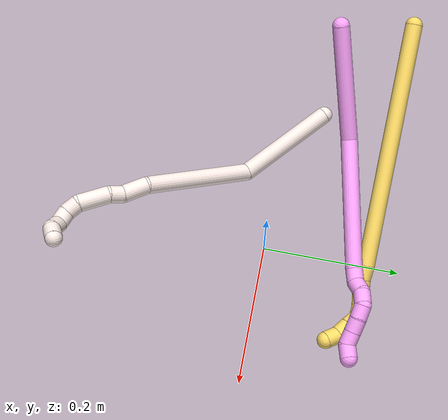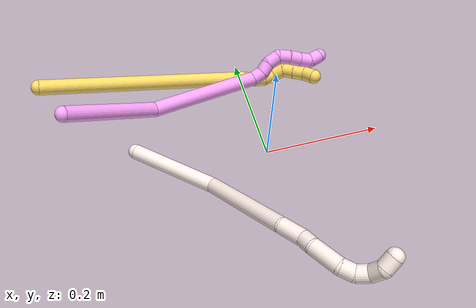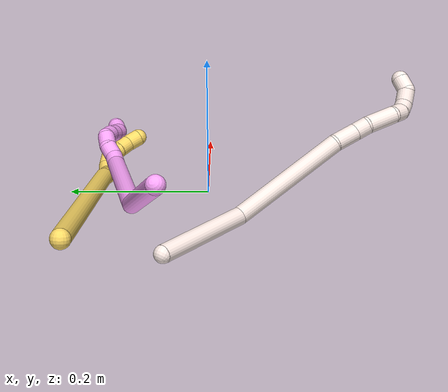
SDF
<sdf version="1.7">
 <world name="default">
  <model name="4">
   <static>0</static>
   <link name="4">
    <collision name="collision-cylinder-e_1_1_4">
     <pose>0.036345 0.019995 -0.072562 -2.87271 0.449857 -2.0738</pose>
     <geometry><cylinder><radius>0.0125</radius><length>0.167164</length></cylinder></geometry>
     <surface>
      <friction><ode><mu>1.16</mu><mu2>1.16</mu2><slip1>0</slip1><slip2>0</slip2></ode></friction>
      <contact><ode><kp>1e+06</kp><kd>1</kd><max_vel>0</max_vel><min_depth>0.001</min_depth></ode></contact>
     </surface>
    </collision>
    <visual name="visual-cylinder-e_1_1_4">
     <pose>0.036345 0.019995 -0.072562 -2.87271 0.449857 -2.0738</pose>
     <geometry><cylinder><radius>0.0125</radius><length>0.167164</length></cylinder></geometry>
     <material><ambient>1 0.65098 0.996078 1</ambient></material>
    </visual>
    <collision name="collision-cylinder-e_2_4_5">
     <pose>0.138689 0.03222 -0.212944 3.02753 0.768535 2.86106</pose>
     <geometry><cylinder><radius>0.0125</radius><length>0.189905</length></cylinder></geometry>
     <surface>
      <friction><ode><mu>1.16</mu><mu2>1.16</mu2><slip1>0</slip1><slip2>0</slip2></ode></friction>
      <contact><ode><kp>1e+06</kp><kd>1</kd><max_vel>0</max_vel><min_depth>0.001</min_depth></ode></contact>
     </surface>
    </collision>
    <visual name="visual-cylinder-e_2_4_5">
     <pose>0.138689 0.03222 -0.212944 3.02753 0.768535 2.86106</pose>
     <geometry><cylinder><radius>0.0125</radius><length>0.189905</length></cylinder></geometry>
     <material><ambient>1 0.65098 0.996078 1</ambient></material>
    </visual>
    <collision name="collision-cylinder-e_3_5_6">
     <pose>0.213329 0.02226 -0.285831 2.73339 1.00231 2.41906</pose>
     <geometry><cylinder><radius>0.0125</radius><length>0.020506</length></cylinder></geometry>
     <surface>
      <friction><ode><mu>1.16</mu><mu2>1.16</mu2><slip1>0</slip1><slip2>0</slip2></ode></friction>
      <contact><ode><kp>1e+06</kp><kd>1</kd><max_vel>0</max_vel><min_depth>0.001</min_depth></ode></contact>
     </surface>
    </collision>
    <visual name="visual-cylinder-e_3_5_6">
     <pose>0.213329 0.02226 -0.285831 2.73339 1.00231 2.41906</pose>
     <geometry><cylinder><radius>0.0125</radius><length>0.020506</length></cylinder></geometry>
     <material><ambient>1 0.65098 0.996078 1</ambient></material>
    </visual>
    <collision name="collision-cylinder-e_4_6_7">
     <pose>0.231882 0.018429 -0.290956 1.60684 1.40678 1.44245</pose>
     <geometry><cylinder><radius>0.0125</radius><length>0.020095</length></cylinder></geometry>
     <surface>
      <friction><ode><mu>1.16</mu><mu2>1.16</mu2><slip1>0</slip1><slip2>0</slip2></ode></friction>
      <contact><ode><kp>1e+06</kp><kd>1</kd><max_vel>0</max_vel><min_depth>0.001</min_depth></ode></contact>
     </surface>
    </collision>
    <visual name="visual-cylinder-e_4_6_7">
     <pose>0.231882 0.018429 -0.290956 1.60684 1.40678 1.44245</pose>
     <geometry><cylinder><radius>0.0125</radius><length>0.020095</length></cylinder></geometry>
     <material><ambient>1 0.65098 0.996078 1</ambient></material>
    </visual>
    <collision name="collision-cylinder-e_5_7_8">
     <pose>0.251248 0.013023 -0.29482 2.36119 1.05551 1.91266</pose>
     <geometry><cylinder><radius>0.0125</radius><length>0.021727</length></cylinder></geometry>
     <surface>
      <friction><ode><mu>1.16</mu><mu2>1.16</mu2><slip1>0</slip1><slip2>0</slip2></ode></friction>
      <contact><ode><kp>1e+06</kp><kd>1</kd><max_vel>0</max_vel><min_depth>0.001</min_depth></ode></contact>
     </surface>
    </collision>
    <visual name="visual-cylinder-e_5_7_8">
     <pose>0.251248 0.013023 -0.29482 2.36119 1.05551 1.91266</pose>
     <geometry><cylinder><radius>0.0125</radius><length>0.021727</length></cylinder></geometry>
     <material><ambient>1 0.65098 0.996078 1</ambient></material>
    </visual>
    <collision name="collision-cylinder-e_6_8_9">
     <pose>0.265044 0.005861 -0.30715 2.76252 0.442061 1.72824</pose>
     <geometry><cylinder><radius>0.0125</radius><length>0.020306</length></cylinder></geometry>
     <surface>
      <friction><ode><mu>1.16</mu><mu2>1.16</mu2><slip1>0</slip1><slip2>0</slip2></ode></friction>
      <contact><ode><kp>1e+06</kp><kd>1</kd><max_vel>0</max_vel><min_depth>0.001</min_depth></ode></contact>
     </surface>
    </collision>
    <visual name="visual-cylinder-e_6_8_9">
     <pose>0.265044 0.005861 -0.30715 2.76252 0.442061 1.72824</pose>
     <geometry><cylinder><radius>0.0125</radius><length>0.020306</length></cylinder></geometry>
     <material><ambient>1 0.65098 0.996078 1</ambient></material>
    </visual>
    <collision name="collision-cylinder-e_7_9_10">
     <pose>0.27263 -0.000297 -0.324846 2.84916 0.326461 1.68243</pose>
     <geometry><cylinder><radius>0.0125</radius><length>0.020223</length></cylinder></geometry>
     <surface>
      <friction><ode><mu>1.16</mu><mu2>1.16</mu2><slip1>0</slip1><slip2>0</slip2></ode></friction>
      <contact><ode><kp>1e+06</kp><kd>1</kd><max_vel>0</max_vel><min_depth>0.001</min_depth></ode></contact>
     </surface>
    </collision>
    <visual name="visual-cylinder-e_7_9_10">
     <pose>0.27263 -0.000297 -0.324846 2.84916 0.326461 1.68243</pose>
     <geometry><cylinder><radius>0.0125</radius><length>0.020223</length></cylinder></geometry>
     <material><ambient>1 0.65098 0.996078 1</ambient></material>
    </visual>
    <collision name="collision-cylinder-e_8_10_11">
     <pose>0.279429 -0.006328 -0.342791 2.78478 0.362934 1.58818</pose>
     <geometry><cylinder><radius>0.0125</radius><length>0.020034</length></cylinder></geometry>
     <surface>
      <friction><ode><mu>1.16</mu><mu2>1.16</mu2><slip1>0</slip1><slip2>0</slip2></ode></friction>
      <contact><ode><kp>1e+06</kp><kd>1</kd><max_vel>0</max_vel><min_depth>0.001</min_depth></ode></contact>
     </surface>
    </collision>
    <visual name="visual-cylinder-e_8_10_11">
     <pose>0.279429 -0.006328 -0.342791 2.78478 0.362934 1.58818</pose>
     <geometry><cylinder><radius>0.0125</radius><length>0.020034</length></cylinder></geometry>
     <material><ambient>1 0.65098 0.996078 1</ambient></material>
    </visual>
    <collision name="collision-cylinder-e_9_11_2">
     <pose>0.291248 -0.011039 -0.357048 2.8848 0.969511 2.66081</pose>
     <geometry><cylinder><radius>0.0125</radius><length>0.02004</length></cylinder></geometry>
     <surface>
      <friction><ode><mu>1.16</mu><mu2>1.16</mu2><slip1>0</slip1><slip2>0</slip2></ode></friction>
      <contact><ode><kp>1e+06</kp><kd>1</kd><max_vel>0</max_vel><min_depth>0.001</min_depth></ode></contact>
     </surface>
    </collision>
    <visual name="visual-cylinder-e_9_11_2">
     <pose>0.291248 -0.011039 -0.357048 2.8848 0.969511 2.66081</pose>
     <geometry><cylinder><radius>0.0125</radius><length>0.02004</length></cylinder></geometry>
     <material><ambient>1 0.65098 0.996078 1</ambient></material>
    </visual>
    <collision name="collision-sphere-2">
     <pose>0.299511 -0.012478 -0.362531 0 -0 0</pose>
     <geometry><sphere><radius>0.0125</radius></sphere></geometry>
     <surface>
      <friction><ode><mu>1.16</mu><mu2>1.16</mu2><slip1>0</slip1><slip2>0</slip2></ode></friction>
      <contact><ode><kp>1e+06</kp><kd>1</kd><max_vel>0</max_vel><min_depth>0.001</min_depth></ode></contact>
     </surface>
    </collision>
    <visual name="visual-sphere-2">
     <pose>0.299511 -0.012478 -0.362531 0 -0 0</pose>
     <geometry><sphere><radius>0.0125</radius></sphere></geometry>
     <material><ambient>1 0.65098 0.996078 1</ambient></material>
    </visual>
    <collision name="collision-sphere-11">
     <pose>0.282985 -0.009599 -0.351566 0 -0 0</pose>
     <geometry><sphere><radius>0.0125</radius></sphere></geometry>
     <surface>
      <friction><ode><mu>1.16</mu><mu2>1.16</mu2><slip1>0</slip1><slip2>0</slip2></ode></friction>
      <contact><ode><kp>1e+06</kp><kd>1</kd><max_vel>0</max_vel><min_depth>0.001</min_depth></ode></contact>
     </surface>
    </collision>
    <visual name="visual-sphere-11">
     <pose>0.282985 -0.009599 -0.351566 0 -0 0</pose>
     <geometry><sphere><radius>0.0125</radius></sphere></geometry>
     <material><ambient>1 0.65098 0.996078 1</ambient></material>
    </visual>
    <collision name="collision-sphere-10">
     <pose>0.275873 -0.003058 -0.334017 0 -0 0</pose>
     <geometry><sphere><radius>0.0125</radius></sphere></geometry>
     <surface>
      <friction><ode><mu>1.16</mu><mu2>1.16</mu2><slip1>0</slip1><slip2>0</slip2></ode></friction>
      <contact><ode><kp>1e+06</kp><kd>1</kd><max_vel>0</max_vel><min_depth>0.001</min_depth></ode></contact>
     </surface>
    </collision>
    <visual name="visual-sphere-10">
     <pose>0.275873 -0.003058 -0.334017 0 -0 0</pose>
     <geometry><sphere><radius>0.0125</radius></sphere></geometry>
     <material><ambient>1 0.65098 0.996078 1</ambient></material>
    </visual>
    <collision name="collision-sphere-9">
     <pose>0.269387 0.002464 -0.315675 0 -0 0</pose>
     <geometry><sphere><radius>0.0125</radius></sphere></geometry>
     <surface>
      <friction><ode><mu>1.16</mu><mu2>1.16</mu2><slip1>0</slip1><slip2>0</slip2></ode></friction>
      <contact><ode><kp>1e+06</kp><kd>1</kd><max_vel>0</max_vel><min_depth>0.001</min_depth></ode></contact>
     </surface>
    </collision>
    <visual name="visual-sphere-9">
     <pose>0.269387 0.002464 -0.315675 0 -0 0</pose>
     <geometry><sphere><radius>0.0125</radius></sphere></geometry>
     <material><ambient>1 0.65098 0.996078 1</ambient></material>
    </visual>
    <collision name="collision-sphere-4">
     <pose>0.072689 0.03999 -0.145124 0 -0 0</pose>
     <geometry><sphere><radius>0.0125</radius></sphere></geometry>
     <surface>
      <friction><ode><mu>1.16</mu><mu2>1.16</mu2><slip1>0</slip1><slip2>0</slip2></ode></friction>
      <contact><ode><kp>1e+06</kp><kd>1</kd><max_vel>0</max_vel><min_depth>0.001</min_depth></ode></contact>
     </surface>
    </collision>
    <visual name="visual-sphere-4">
     <pose>0.072689 0.03999 -0.145124 0 -0 0</pose>
     <geometry><sphere><radius>0.0125</radius></sphere></geometry>
     <material><ambient>1 0.65098 0.996078 1</ambient></material>
    </visual>
    <collision name="collision-sphere-1">
     <geometry><sphere><radius>0.0125</radius></sphere></geometry>
     <surface>
      <friction><ode><mu>1.16</mu><mu2>1.16</mu2><slip1>0</slip1><slip2>0</slip2></ode></friction>
      <contact><ode><kp>1e+06</kp><kd>1</kd><max_vel>0</max_vel><min_depth>0.001</min_depth></ode></contact>
     </surface>
    </collision>
    <visual name="visual-sphere-1">
     <geometry><sphere><radius>0.0125</radius></sphere></geometry>
     <material><ambient>1 0.65098 0.996078 1</ambient></material>
    </visual>
    <collision name="collision-sphere-8">
     <pose>0.260701 0.009257 -0.298624 0 -0 0</pose>
     <geometry><sphere><radius>0.0125</radius></sphere></geometry>
     <surface>
      <friction><ode><mu>1.16</mu><mu2>1.16</mu2><slip1>0</slip1><slip2>0</slip2></ode></friction>
      <contact><ode><kp>1e+06</kp><kd>1</kd><max_vel>0</max_vel><min_depth>0.001</min_depth></ode></contact>
     </surface>
    </collision>
    <visual name="visual-sphere-8">
     <pose>0.260701 0.009257 -0.298624 0 -0 0</pose>
     <geometry><sphere><radius>0.0125</radius></sphere></geometry>
     <material><ambient>1 0.65098 0.996078 1</ambient></material>
    </visual>
    <collision name="collision-sphere-5">
     <pose>0.204689 0.024451 -0.280765 0 -0 0</pose>
     <geometry><sphere><radius>0.0125</radius></sphere></geometry>
     <surface>
      <friction><ode><mu>1.16</mu><mu2>1.16</mu2><slip1>0</slip1><slip2>0</slip2></ode></friction>
      <contact><ode><kp>1e+06</kp><kd>1</kd><max_vel>0</max_vel><min_depth>0.001</min_depth></ode></contact>
     </surface>
    </collision>
    <visual name="visual-sphere-5">
     <pose>0.204689 0.024451 -0.280765 0 -0 0</pose>
     <geometry><sphere><radius>0.0125</radius></sphere></geometry>
     <material><ambient>1 0.65098 0.996078 1</ambient></material>
    </visual>
    <collision name="collision-sphere-6">
     <pose>0.221969 0.020069 -0.290897 0 -0 0</pose>
     <geometry><sphere><radius>0.0125</radius></sphere></geometry>
     <surface>
      <friction><ode><mu>1.16</mu><mu2>1.16</mu2><slip1>0</slip1><slip2>0</slip2></ode></friction>
      <contact><ode><kp>1e+06</kp><kd>1</kd><max_vel>0</max_vel><min_depth>0.001</min_depth></ode></contact>
     </surface>
    </collision>
    <visual name="visual-sphere-6">
     <pose>0.221969 0.020069 -0.290897 0 -0 0</pose>
     <geometry><sphere><radius>0.0125</radius></sphere></geometry>
     <material><ambient>1 0.65098 0.996078 1</ambient></material>
    </visual>
    <collision name="collision-sphere-7">
     <pose>0.241795 0.01679 -0.291016 0 -0 0</pose>
     <geometry><sphere><radius>0.0125</radius></sphere></geometry>
     <surface>
      <friction><ode><mu>1.16</mu><mu2>1.16</mu2><slip1>0</slip1><slip2>0</slip2></ode></friction>
      <contact><ode><kp>1e+06</kp><kd>1</kd><max_vel>0</max_vel><min_depth>0.001</min_depth></ode></contact>
     </surface>
    </collision>
    <visual name="visual-sphere-7">
     <pose>0.241795 0.01679 -0.291016 0 -0 0</pose>
     <geometry><sphere><radius>0.0125</radius></sphere></geometry>
     <material><ambient>1 0.65098 0.996078 1</ambient></material>
    </visual>
    <inertial>
     <pose>0.138473 0.020672 -0.195023 0 -0 0</pose>
     <mass>0.5</mass>
     <inertia>
      <ixx>-0.000741</ixx>
      <ixy>0</ixy>
      <ixz>0</ixz>
      <iyy>0.000603</iyy>
      <iyz>0</iyz>
      <izz>-0.000654</izz>
     </inertia>
    </inertial>
   </link>
   <pose>-0.308078 0.051693 0.147486 -0.719955 -0.474557 0.779487</pose>
  </model>
  <model name="5">
   <static>0</static>
   <link name="5">
    <collision name="collision-cylinder-e_1_1_4">
     <pose>0.177254 -0.023045 0.004818 1.36468 1.43875 1.23714</pose>
     <geometry><cylinder><radius>0.0125</radius><length>0.357621</length></cylinder></geometry>
     <surface>
      <friction><ode><mu>1.16</mu><mu2>1.16</mu2><slip1>0</slip1><slip2>0</slip2></ode></friction>
      <contact><ode><kp>1e+06</kp><kd>1</kd><max_vel>0</max_vel><min_depth>0.001</min_depth></ode></contact>
     </surface>
    </collision>
    <visual name="visual-cylinder-e_1_1_4">
     <pose>0.177254 -0.023045 0.004818 1.36468 1.43875 1.23714</pose>
     <geometry><cylinder><radius>0.0125</radius><length>0.357621</length></cylinder></geometry>
     <material><ambient>1 0.858824 0.4 1</ambient></material>
    </visual>
    <collision name="collision-cylinder-e_2_4_5">
     <pose>0.364315 -0.048328 0.008978 1.85709 1.33726 1.62537</pose>
     <geometry><cylinder><radius>0.0125</radius><length>0.020163</length></cylinder></geometry>
     <surface>
      <friction><ode><mu>1.16</mu><mu2>1.16</mu2><slip1>0</slip1><slip2>0</slip2></ode></friction>
      <contact><ode><kp>1e+06</kp><kd>1</kd><max_vel>0</max_vel><min_depth>0.001</min_depth></ode></contact>
     </surface>
    </collision>
    <visual name="visual-cylinder-e_2_4_5">
     <pose>0.364315 -0.048328 0.008978 1.85709 1.33726 1.62537</pose>
     <geometry><cylinder><radius>0.0125</radius><length>0.020163</length></cylinder></geometry>
     <material><ambient>1 0.858824 0.4 1</ambient></material>
    </visual>
    <collision name="collision-cylinder-e_3_5_6">
     <pose>0.38452 -0.050904 0.007847 2.5196 1.51503 2.48635</pose>
     <geometry><cylinder><radius>0.0125</radius><length>0.020826</length></cylinder></geometry>
     <surface>
      <friction><ode><mu>1.16</mu><mu2>1.16</mu2><slip1>0</slip1><slip2>0</slip2></ode></friction>
      <contact><ode><kp>1e+06</kp><kd>1</kd><max_vel>0</max_vel><min_depth>0.001</min_depth></ode></contact>
     </surface>
    </collision>
    <visual name="visual-cylinder-e_3_5_6">
     <pose>0.38452 -0.050904 0.007847 2.5196 1.51503 2.48635</pose>
     <geometry><cylinder><radius>0.0125</radius><length>0.020826</length></cylinder></geometry>
     <material><ambient>1 0.858824 0.4 1</ambient></material>
    </visual>
    <collision name="collision-cylinder-e_4_6_7">
     <pose>0.404121 -0.050892 0.011421 -0.086286 1.15526 -0.05626</pose>
     <geometry><cylinder><radius>0.0125</radius><length>0.020119</length></cylinder></geometry>
     <surface>
      <friction><ode><mu>1.16</mu><mu2>1.16</mu2><slip1>0</slip1><slip2>0</slip2></ode></friction>
      <contact><ode><kp>1e+06</kp><kd>1</kd><max_vel>0</max_vel><min_depth>0.001</min_depth></ode></contact>
     </surface>
    </collision>
    <visual name="visual-cylinder-e_4_6_7">
     <pose>0.404121 -0.050892 0.011421 -0.086286 1.15526 -0.05626</pose>
     <geometry><cylinder><radius>0.0125</radius><length>0.020119</length></cylinder></geometry>
     <material><ambient>1 0.858824 0.4 1</ambient></material>
    </visual>
    <collision name="collision-cylinder-e_5_7_8">
     <pose>0.420966 -0.052498 0.022308 0.278534 0.821074 0.121876</pose>
     <geometry><cylinder><radius>0.0125</radius><length>0.020883</length></cylinder></geometry>
     <surface>
      <friction><ode><mu>1.16</mu><mu2>1.16</mu2><slip1>0</slip1><slip2>0</slip2></ode></friction>
      <contact><ode><kp>1e+06</kp><kd>1</kd><max_vel>0</max_vel><min_depth>0.001</min_depth></ode></contact>
     </surface>
    </collision>
    <visual name="visual-cylinder-e_5_7_8">
     <pose>0.420966 -0.052498 0.022308 0.278534 0.821074 0.121876</pose>
     <geometry><cylinder><radius>0.0125</radius><length>0.020883</length></cylinder></geometry>
     <material><ambient>1 0.858824 0.4 1</ambient></material>
    </visual>
    <collision name="collision-cylinder-e_6_8_9">
     <pose>0.434717 -0.061395 0.032987 1.06559 0.656293 0.396252</pose>
     <geometry><cylinder><radius>0.0125</radius><length>0.020022</length></cylinder></geometry>
     <surface>
      <friction><ode><mu>1.16</mu><mu2>1.16</mu2><slip1>0</slip1><slip2>0</slip2></ode></friction>
      <contact><ode><kp>1e+06</kp><kd>1</kd><max_vel>0</max_vel><min_depth>0.001</min_depth></ode></contact>
     </surface>
    </collision>
    <visual name="visual-cylinder-e_6_8_9">
     <pose>0.434717 -0.061395 0.032987 1.06559 0.656293 0.396252</pose>
     <geometry><cylinder><radius>0.0125</radius><length>0.020022</length></cylinder></geometry>
     <material><ambient>1 0.858824 0.4 1</ambient></material>
    </visual>
    <collision name="collision-cylinder-e_7_9_10">
     <pose>0.447319 -0.0751 0.040729 1.04748 0.693675 0.411591</pose>
     <geometry><cylinder><radius>0.0125</radius><length>0.020315</length></cylinder></geometry>
     <surface>
      <friction><ode><mu>1.16</mu><mu2>1.16</mu2><slip1>0</slip1><slip2>0</slip2></ode></friction>
      <contact><ode><kp>1e+06</kp><kd>1</kd><max_vel>0</max_vel><min_depth>0.001</min_depth></ode></contact>
     </surface>
    </collision>
    <visual name="visual-cylinder-e_7_9_10">
     <pose>0.447319 -0.0751 0.040729 1.04748 0.693675 0.411591</pose>
     <geometry><cylinder><radius>0.0125</radius><length>0.020315</length></cylinder></geometry>
     <material><ambient>1 0.858824 0.4 1</ambient></material>
    </visual>
    <collision name="collision-cylinder-e_8_10_2">
     <pose>0.457507 -0.090147 0.048908 1.09419 0.377249 0.231512</pose>
     <geometry><cylinder><radius>0.0125</radius><length>0.020051</length></cylinder></geometry>
     <surface>
      <friction><ode><mu>1.16</mu><mu2>1.16</mu2><slip1>0</slip1><slip2>0</slip2></ode></friction>
      <contact><ode><kp>1e+06</kp><kd>1</kd><max_vel>0</max_vel><min_depth>0.001</min_depth></ode></contact>
     </surface>
    </collision>
    <visual name="visual-cylinder-e_8_10_2">
     <pose>0.457507 -0.090147 0.048908 1.09419 0.377249 0.231512</pose>
     <geometry><cylinder><radius>0.0125</radius><length>0.020051</length></cylinder></geometry>
     <material><ambient>1 0.858824 0.4 1</ambient></material>
    </visual>
    <collision name="collision-sphere-2">
     <pose>0.4612 -0.098429 0.053184 0 -0 0</pose>
     <geometry><sphere><radius>0.0125</radius></sphere></geometry>
     <surface>
      <friction><ode><mu>1.16</mu><mu2>1.16</mu2><slip1>0</slip1><slip2>0</slip2></ode></friction>
      <contact><ode><kp>1e+06</kp><kd>1</kd><max_vel>0</max_vel><min_depth>0.001</min_depth></ode></contact>
     </surface>
    </collision>
    <visual name="visual-sphere-2">
     <pose>0.4612 -0.098429 0.053184 0 -0 0</pose>
     <geometry><sphere><radius>0.0125</radius></sphere></geometry>
     <material><ambient>1 0.858824 0.4 1</ambient></material>
    </visual>
    <collision name="collision-sphere-10">
     <pose>0.453814 -0.081865 0.044632 0 -0 0</pose>
     <geometry><sphere><radius>0.0125</radius></sphere></geometry>
     <surface>
      <friction><ode><mu>1.16</mu><mu2>1.16</mu2><slip1>0</slip1><slip2>0</slip2></ode></friction>
      <contact><ode><kp>1e+06</kp><kd>1</kd><max_vel>0</max_vel><min_depth>0.001</min_depth></ode></contact>
     </surface>
    </collision>
    <visual name="visual-sphere-10">
     <pose>0.453814 -0.081865 0.044632 0 -0 0</pose>
     <geometry><sphere><radius>0.0125</radius></sphere></geometry>
     <material><ambient>1 0.858824 0.4 1</ambient></material>
    </visual>
    <collision name="collision-sphere-9">
     <pose>0.440825 -0.068336 0.036826 0 -0 0</pose>
     <geometry><sphere><radius>0.0125</radius></sphere></geometry>
     <surface>
      <friction><ode><mu>1.16</mu><mu2>1.16</mu2><slip1>0</slip1><slip2>0</slip2></ode></friction>
      <contact><ode><kp>1e+06</kp><kd>1</kd><max_vel>0</max_vel><min_depth>0.001</min_depth></ode></contact>
     </surface>
    </collision>
    <visual name="visual-sphere-9">
     <pose>0.440825 -0.068336 0.036826 0 -0 0</pose>
     <geometry><sphere><radius>0.0125</radius></sphere></geometry>
     <material><ambient>1 0.858824 0.4 1</ambient></material>
    </visual>
    <collision name="collision-sphere-4">
     <pose>0.354508 -0.04609 0.009637 0 -0 0</pose>
     <geometry><sphere><radius>0.0125</radius></sphere></geometry>
     <surface>
      <friction><ode><mu>1.16</mu><mu2>1.16</mu2><slip1>0</slip1><slip2>0</slip2></ode></friction>
      <contact><ode><kp>1e+06</kp><kd>1</kd><max_vel>0</max_vel><min_depth>0.001</min_depth></ode></contact>
     </surface>
    </collision>
    <visual name="visual-sphere-4">
     <pose>0.354508 -0.04609 0.009637 0 -0 0</pose>
     <geometry><sphere><radius>0.0125</radius></sphere></geometry>
     <material><ambient>1 0.858824 0.4 1</ambient></material>
    </visual>
    <collision name="collision-sphere-1">
     <geometry><sphere><radius>0.0125</radius></sphere></geometry>
     <surface>
      <friction><ode><mu>1.16</mu><mu2>1.16</mu2><slip1>0</slip1><slip2>0</slip2></ode></friction>
      <contact><ode><kp>1e+06</kp><kd>1</kd><max_vel>0</max_vel><min_depth>0.001</min_depth></ode></contact>
     </surface>
    </collision>
    <visual name="visual-sphere-1">
     <geometry><sphere><radius>0.0125</radius></sphere></geometry>
     <material><ambient>1 0.858824 0.4 1</ambient></material>
    </visual>
    <collision name="collision-sphere-8">
     <pose>0.428608 -0.054455 0.029149 0 -0 0</pose>
     <geometry><sphere><radius>0.0125</radius></sphere></geometry>
     <surface>
      <friction><ode><mu>1.16</mu><mu2>1.16</mu2><slip1>0</slip1><slip2>0</slip2></ode></friction>
      <contact><ode><kp>1e+06</kp><kd>1</kd><max_vel>0</max_vel><min_depth>0.001</min_depth></ode></contact>
     </surface>
    </collision>
    <visual name="visual-sphere-8">
     <pose>0.428608 -0.054455 0.029149 0 -0 0</pose>
     <geometry><sphere><radius>0.0125</radius></sphere></geometry>
     <material><ambient>1 0.858824 0.4 1</ambient></material>
    </visual>
    <collision name="collision-sphere-5">
     <pose>0.374123 -0.050566 0.008319 0 -0 0</pose>
     <geometry><sphere><radius>0.0125</radius></sphere></geometry>
     <surface>
      <friction><ode><mu>1.16</mu><mu2>1.16</mu2><slip1>0</slip1><slip2>0</slip2></ode></friction>
      <contact><ode><kp>1e+06</kp><kd>1</kd><max_vel>0</max_vel><min_depth>0.001</min_depth></ode></contact>
     </surface>
    </collision>
    <visual name="visual-sphere-5">
     <pose>0.374123 -0.050566 0.008319 0 -0 0</pose>
     <geometry><sphere><radius>0.0125</radius></sphere></geometry>
     <material><ambient>1 0.858824 0.4 1</ambient></material>
    </visual>
    <collision name="collision-sphere-6">
     <pose>0.394917 -0.051242 0.007376 0 -0 0</pose>
     <geometry><sphere><radius>0.0125</radius></sphere></geometry>
     <surface>
      <friction><ode><mu>1.16</mu><mu2>1.16</mu2><slip1>0</slip1><slip2>0</slip2></ode></friction>
      <contact><ode><kp>1e+06</kp><kd>1</kd><max_vel>0</max_vel><min_depth>0.001</min_depth></ode></contact>
     </surface>
    </collision>
    <visual name="visual-sphere-6">
     <pose>0.394917 -0.051242 0.007376 0 -0 0</pose>
     <geometry><sphere><radius>0.0125</radius></sphere></geometry>
     <material><ambient>1 0.858824 0.4 1</ambient></material>
    </visual>
    <collision name="collision-sphere-7">
     <pose>0.413325 -0.050542 0.015467 0 -0 0</pose>
     <geometry><sphere><radius>0.0125</radius></sphere></geometry>
     <surface>
      <friction><ode><mu>1.16</mu><mu2>1.16</mu2><slip1>0</slip1><slip2>0</slip2></ode></friction>
      <contact><ode><kp>1e+06</kp><kd>1</kd><max_vel>0</max_vel><min_depth>0.001</min_depth></ode></contact>
     </surface>
    </collision>
    <visual name="visual-sphere-7">
     <pose>0.413325 -0.050542 0.015467 0 -0 0</pose>
     <geometry><sphere><radius>0.0125</radius></sphere></geometry>
     <material><ambient>1 0.858824 0.4 1</ambient></material>
    </visual>
    <inertial>
     <pose>0.245259 -0.033917 0.010463 0 -0 0</pose>
     <mass>0.5</mass>
     <inertia>
      <ixx>0.000684</ixx>
      <ixy>0</ixy>
      <ixz>0</ixz>
      <iyy>0.004242</iyy>
      <iyz>0</iyz>
      <izz>-0.003299</izz>
     </inertia>
    </inertial>
   </link>
   <pose>-0.347813 0.156644 0.099064 0.045057 0.236423 0.118443</pose>
  </model>
  <model name="11">
   <static>0</static>
   <link name="11">
    <collision name="collision-cylinder-e_1_1_4">
     <pose>0.040429 -0.033246 0.051207 0.57585 0.584905 0.177865</pose>
     <geometry><cylinder><radius>0.0125</radius><length>0.146451</length></cylinder></geometry>
     <surface>
      <friction><ode><mu>1.16</mu><mu2>1.16</mu2><slip1>0</slip1><slip2>0</slip2></ode></friction>
      <contact><ode><kp>1e+06</kp><kd>1</kd><max_vel>0</max_vel><min_depth>0.001</min_depth></ode></contact>
     </surface>
    </collision>
    <visual name="visual-cylinder-e_1_1_4">
     <pose>0.040429 -0.033246 0.051207 0.57585 0.584905 0.177865</pose>
     <geometry><cylinder><radius>0.0125</radius><length>0.146451</length></cylinder></geometry>
     <material><ambient>1 0.933333 0.909804 1</ambient></material>
    </visual>
    <collision name="collision-cylinder-e_2_4_5">
     <pose>0.079869 -0.103899 0.177838 0.460405 -0.01175 -0.002754</pose>
     <geometry><cylinder><radius>0.0125</radius><length>0.168393</length></cylinder></geometry>
     <surface>
      <friction><ode><mu>1.16</mu><mu2>1.16</mu2><slip1>0</slip1><slip2>0</slip2></ode></friction>
      <contact><ode><kp>1e+06</kp><kd>1</kd><max_vel>0</max_vel><min_depth>0.001</min_depth></ode></contact>
     </surface>
    </collision>
    <visual name="visual-cylinder-e_2_4_5">
     <pose>0.079869 -0.103899 0.177838 0.460405 -0.01175 -0.002754</pose>
     <geometry><cylinder><radius>0.0125</radius><length>0.168393</length></cylinder></geometry>
     <material><ambient>1 0.933333 0.909804 1</ambient></material>
    </visual>
    <collision name="collision-cylinder-e_3_5_6">
     <pose>0.083999 -0.150942 0.268261 0.571011 0.279615 0.082566</pose>
     <geometry><cylinder><radius>0.0125</radius><length>0.037096</length></cylinder></geometry>
     <surface>
      <friction><ode><mu>1.16</mu><mu2>1.16</mu2><slip1>0</slip1><slip2>0</slip2></ode></friction>
      <contact><ode><kp>1e+06</kp><kd>1</kd><max_vel>0</max_vel><min_depth>0.001</min_depth></ode></contact>
     </surface>
    </collision>
    <visual name="visual-cylinder-e_3_5_6">
     <pose>0.083999 -0.150942 0.268261 0.571011 0.279615 0.082566</pose>
     <geometry><cylinder><radius>0.0125</radius><length>0.037096</length></cylinder></geometry>
     <material><ambient>1 0.933333 0.909804 1</ambient></material>
    </visual>
    <collision name="collision-cylinder-e_4_6_7">
     <pose>0.088456 -0.166438 0.291797 0.601692 -0.063845 -0.019815</pose>
     <geometry><cylinder><radius>0.0125</radius><length>0.020751</length></cylinder></geometry>
     <surface>
      <friction><ode><mu>1.16</mu><mu2>1.16</mu2><slip1>0</slip1><slip2>0</slip2></ode></friction>
      <contact><ode><kp>1e+06</kp><kd>1</kd><max_vel>0</max_vel><min_depth>0.001</min_depth></ode></contact>
     </surface>
    </collision>
    <visual name="visual-cylinder-e_4_6_7">
     <pose>0.088456 -0.166438 0.291797 0.601692 -0.063845 -0.019815</pose>
     <geometry><cylinder><radius>0.0125</radius><length>0.020751</length></cylinder></geometry>
     <material><ambient>1 0.933333 0.909804 1</ambient></material>
    </visual>
    <collision name="collision-cylinder-e_5_7_8">
     <pose>0.093205 -0.185986 0.31727 0.679679 0.243557 0.086485</pose>
     <geometry><cylinder><radius>0.0125</radius><length>0.044877</length></cylinder></geometry>
     <surface>
      <friction><ode><mu>1.16</mu><mu2>1.16</mu2><slip1>0</slip1><slip2>0</slip2></ode></friction>
      <contact><ode><kp>1e+06</kp><kd>1</kd><max_vel>0</max_vel><min_depth>0.001</min_depth></ode></contact>
     </surface>
    </collision>
    <visual name="visual-cylinder-e_5_7_8">
     <pose>0.093205 -0.185986 0.31727 0.679679 0.243557 0.086485</pose>
     <geometry><cylinder><radius>0.0125</radius><length>0.044877</length></cylinder></geometry>
     <material><ambient>1 0.933333 0.909804 1</ambient></material>
    </visual>
    <collision name="collision-cylinder-e_6_8_9">
     <pose>0.104654 -0.204434 0.3408 0.625299 0.638697 0.212968</pose>
     <geometry><cylinder><radius>0.0125</radius><length>0.020257</length></cylinder></geometry>
     <surface>
      <friction><ode><mu>1.16</mu><mu2>1.16</mu2><slip1>0</slip1><slip2>0</slip2></ode></friction>
      <contact><ode><kp>1e+06</kp><kd>1</kd><max_vel>0</max_vel><min_depth>0.001</min_depth></ode></contact>
     </surface>
    </collision>
    <visual name="visual-cylinder-e_6_8_9">
     <pose>0.104654 -0.204434 0.3408 0.625299 0.638697 0.212968</pose>
     <geometry><cylinder><radius>0.0125</radius><length>0.020257</length></cylinder></geometry>
     <material><ambient>1 0.933333 0.909804 1</ambient></material>
    </visual>
    <collision name="collision-cylinder-e_7_9_10">
     <pose>0.116796 -0.209484 0.355501 0.035842 0.644982 0.011978</pose>
     <geometry><cylinder><radius>0.0125</radius><length>0.020305</length></cylinder></geometry>
     <surface>
      <friction><ode><mu>1.16</mu><mu2>1.16</mu2><slip1>0</slip1><slip2>0</slip2></ode></friction>
      <contact><ode><kp>1e+06</kp><kd>1</kd><max_vel>0</max_vel><min_depth>0.001</min_depth></ode></contact>
     </surface>
    </collision>
    <visual name="visual-cylinder-e_7_9_10">
     <pose>0.116796 -0.209484 0.355501 0.035842 0.644982 0.011978</pose>
     <geometry><cylinder><radius>0.0125</radius><length>0.020305</length></cylinder></geometry>
     <material><ambient>1 0.933333 0.909804 1</ambient></material>
    </visual>
    <collision name="collision-cylinder-e_8_10_11">
     <pose>0.122427 -0.207119 0.374176 -0.24625 -0.043347 0.005365</pose>
     <geometry><cylinder><radius>0.0125</radius><length>0.021813</length></cylinder></geometry>
     <surface>
      <friction><ode><mu>1.16</mu><mu2>1.16</mu2><slip1>0</slip1><slip2>0</slip2></ode></friction>
      <contact><ode><kp>1e+06</kp><kd>1</kd><max_vel>0</max_vel><min_depth>0.001</min_depth></ode></contact>
     </surface>
    </collision>
    <visual name="visual-cylinder-e_8_10_11">
     <pose>0.122427 -0.207119 0.374176 -0.24625 -0.043347 0.005365</pose>
     <geometry><cylinder><radius>0.0125</radius><length>0.021813</length></cylinder></geometry>
     <material><ambient>1 0.933333 0.909804 1</ambient></material>
    </visual>
    <collision name="collision-cylinder-e_9_11_2">
     <pose>0.124698 -0.197358 0.391268 -0.827912 0.277112 -0.122379</pose>
     <geometry><cylinder><radius>0.0125</radius><length>0.020057</length></cylinder></geometry>
     <surface>
      <friction><ode><mu>1.16</mu><mu2>1.16</mu2><slip1>0</slip1><slip2>0</slip2></ode></friction>
      <contact><ode><kp>1e+06</kp><kd>1</kd><max_vel>0</max_vel><min_depth>0.001</min_depth></ode></contact>
     </surface>
    </collision>
    <visual name="visual-cylinder-e_9_11_2">
     <pose>0.124698 -0.197358 0.391268 -0.827912 0.277112 -0.122379</pose>
     <geometry><cylinder><radius>0.0125</radius><length>0.020057</length></cylinder></geometry>
     <material><ambient>1 0.933333 0.909804 1</ambient></material>
    </visual>
    <collision name="collision-sphere-2">
     <pose>0.127442 -0.190254 0.397793 0 -0 0</pose>
     <geometry><sphere><radius>0.0125</radius></sphere></geometry>
     <surface>
      <friction><ode><mu>1.16</mu><mu2>1.16</mu2><slip1>0</slip1><slip2>0</slip2></ode></friction>
      <contact><ode><kp>1e+06</kp><kd>1</kd><max_vel>0</max_vel><min_depth>0.001</min_depth></ode></contact>
     </surface>
    </collision>
    <visual name="visual-sphere-2">
     <pose>0.127442 -0.190254 0.397793 0 -0 0</pose>
     <geometry><sphere><radius>0.0125</radius></sphere></geometry>
     <material><ambient>1 0.933333 0.909804 1</ambient></material>
    </visual>
    <collision name="collision-sphere-11">
     <pose>0.121954 -0.204463 0.384744 0 -0 0</pose>
     <geometry><sphere><radius>0.0125</radius></sphere></geometry>
     <surface>
      <friction><ode><mu>1.16</mu><mu2>1.16</mu2><slip1>0</slip1><slip2>0</slip2></ode></friction>
      <contact><ode><kp>1e+06</kp><kd>1</kd><max_vel>0</max_vel><min_depth>0.001</min_depth></ode></contact>
     </surface>
    </collision>
    <visual name="visual-sphere-11">
     <pose>0.121954 -0.204463 0.384744 0 -0 0</pose>
     <geometry><sphere><radius>0.0125</radius></sphere></geometry>
     <material><ambient>1 0.933333 0.909804 1</ambient></material>
    </visual>
    <collision name="collision-sphere-10">
     <pose>0.1229 -0.209775 0.363609 0 -0 0</pose>
     <geometry><sphere><radius>0.0125</radius></sphere></geometry>
     <surface>
      <friction><ode><mu>1.16</mu><mu2>1.16</mu2><slip1>0</slip1><slip2>0</slip2></ode></friction>
      <contact><ode><kp>1e+06</kp><kd>1</kd><max_vel>0</max_vel><min_depth>0.001</min_depth></ode></contact>
     </surface>
    </collision>
    <visual name="visual-sphere-10">
     <pose>0.1229 -0.209775 0.363609 0 -0 0</pose>
     <geometry><sphere><radius>0.0125</radius></sphere></geometry>
     <material><ambient>1 0.933333 0.909804 1</ambient></material>
    </visual>
    <collision name="collision-sphere-9">
     <pose>0.110693 -0.209194 0.347393 0 -0 0</pose>
     <geometry><sphere><radius>0.0125</radius></sphere></geometry>
     <surface>
      <friction><ode><mu>1.16</mu><mu2>1.16</mu2><slip1>0</slip1><slip2>0</slip2></ode></friction>
      <contact><ode><kp>1e+06</kp><kd>1</kd><max_vel>0</max_vel><min_depth>0.001</min_depth></ode></contact>
     </surface>
    </collision>
    <visual name="visual-sphere-9">
     <pose>0.110693 -0.209194 0.347393 0 -0 0</pose>
     <geometry><sphere><radius>0.0125</radius></sphere></geometry>
     <material><ambient>1 0.933333 0.909804 1</ambient></material>
    </visual>
    <collision name="collision-sphere-4">
     <pose>0.080859 -0.066492 0.102414 0 -0 0</pose>
     <geometry><sphere><radius>0.0125</radius></sphere></geometry>
     <surface>
      <friction><ode><mu>1.16</mu><mu2>1.16</mu2><slip1>0</slip1><slip2>0</slip2></ode></friction>
      <contact><ode><kp>1e+06</kp><kd>1</kd><max_vel>0</max_vel><min_depth>0.001</min_depth></ode></contact>
     </surface>
    </collision>
    <visual name="visual-sphere-4">
     <pose>0.080859 -0.066492 0.102414 0 -0 0</pose>
     <geometry><sphere><radius>0.0125</radius></sphere></geometry>
     <material><ambient>1 0.933333 0.909804 1</ambient></material>
    </visual>
    <collision name="collision-sphere-1">
     <geometry><sphere><radius>0.0125</radius></sphere></geometry>
     <surface>
      <friction><ode><mu>1.16</mu><mu2>1.16</mu2><slip1>0</slip1><slip2>0</slip2></ode></friction>
      <contact><ode><kp>1e+06</kp><kd>1</kd><max_vel>0</max_vel><min_depth>0.001</min_depth></ode></contact>
     </surface>
    </collision>
    <visual name="visual-sphere-1">
     <geometry><sphere><radius>0.0125</radius></sphere></geometry>
     <material><ambient>1 0.933333 0.909804 1</ambient></material>
    </visual>
    <collision name="collision-sphere-8">
     <pose>0.098616 -0.199674 0.334206 0 -0 0</pose>
     <geometry><sphere><radius>0.0125</radius></sphere></geometry>
     <surface>
      <friction><ode><mu>1.16</mu><mu2>1.16</mu2><slip1>0</slip1><slip2>0</slip2></ode></friction>
      <contact><ode><kp>1e+06</kp><kd>1</kd><max_vel>0</max_vel><min_depth>0.001</min_depth></ode></contact>
     </surface>
    </collision>
    <visual name="visual-sphere-8">
     <pose>0.098616 -0.199674 0.334206 0 -0 0</pose>
     <geometry><sphere><radius>0.0125</radius></sphere></geometry>
     <material><ambient>1 0.933333 0.909804 1</ambient></material>
    </visual>
    <collision name="collision-sphere-5">
     <pose>0.07888 -0.141306 0.253262 0 -0 0</pose>
     <geometry><sphere><radius>0.0125</radius></sphere></geometry>
     <surface>
      <friction><ode><mu>1.16</mu><mu2>1.16</mu2><slip1>0</slip1><slip2>0</slip2></ode></friction>
      <contact><ode><kp>1e+06</kp><kd>1</kd><max_vel>0</max_vel><min_depth>0.001</min_depth></ode></contact>
     </surface>
    </collision>
    <visual name="visual-sphere-5">
     <pose>0.07888 -0.141306 0.253262 0 -0 0</pose>
     <geometry><sphere><radius>0.0125</radius></sphere></geometry>
     <material><ambient>1 0.933333 0.909804 1</ambient></material>
    </visual>
    <collision name="collision-sphere-6">
     <pose>0.089118 -0.160577 0.283261 0 -0 0</pose>
     <geometry><sphere><radius>0.0125</radius></sphere></geometry>
     <surface>
      <friction><ode><mu>1.16</mu><mu2>1.16</mu2><slip1>0</slip1><slip2>0</slip2></ode></friction>
      <contact><ode><kp>1e+06</kp><kd>1</kd><max_vel>0</max_vel><min_depth>0.001</min_depth></ode></contact>
     </surface>
    </collision>
    <visual name="visual-sphere-6">
     <pose>0.089118 -0.160577 0.283261 0 -0 0</pose>
     <geometry><sphere><radius>0.0125</radius></sphere></geometry>
     <material><ambient>1 0.933333 0.909804 1</ambient></material>
    </visual>
    <collision name="collision-sphere-7">
     <pose>0.087794 -0.172299 0.300333 0 -0 0</pose>
     <geometry><sphere><radius>0.0125</radius></sphere></geometry>
     <surface>
      <friction><ode><mu>1.16</mu><mu2>1.16</mu2><slip1>0</slip1><slip2>0</slip2></ode></friction>
      <contact><ode><kp>1e+06</kp><kd>1</kd><max_vel>0</max_vel><min_depth>0.001</min_depth></ode></contact>
     </surface>
    </collision>
    <visual name="visual-sphere-7">
     <pose>0.087794 -0.172299 0.300333 0 -0 0</pose>
     <geometry><sphere><radius>0.0125</radius></sphere></geometry>
     <material><ambient>1 0.933333 0.909804 1</ambient></material>
    </visual>
    <inertial>
     <pose>0.076336 -0.113271 0.195644 0 -0 0</pose>
     <mass>0.5</mass>
     <inertia>
      <ixx>0.000695</ixx>
      <ixy>0</ixy>
      <ixz>0</ixz>
      <iyy>0.000641</iyy>
      <iyz>0</iyz>
      <izz>0.000192</izz>
     </inertia>
    </inertial>
   </link>
   <pose>-0.216815 0.052029 0.011493 0.499233 0.604573 0.091582</pose>
  </model>
 </world>
</sdf>
